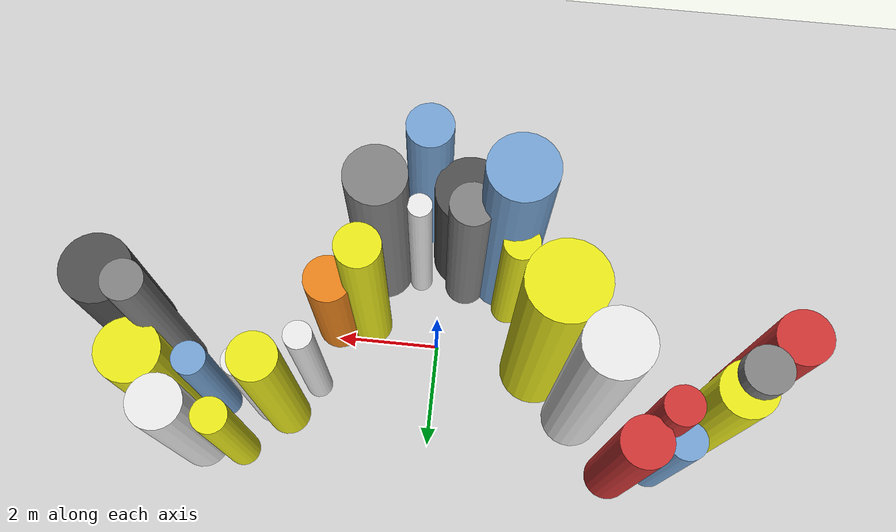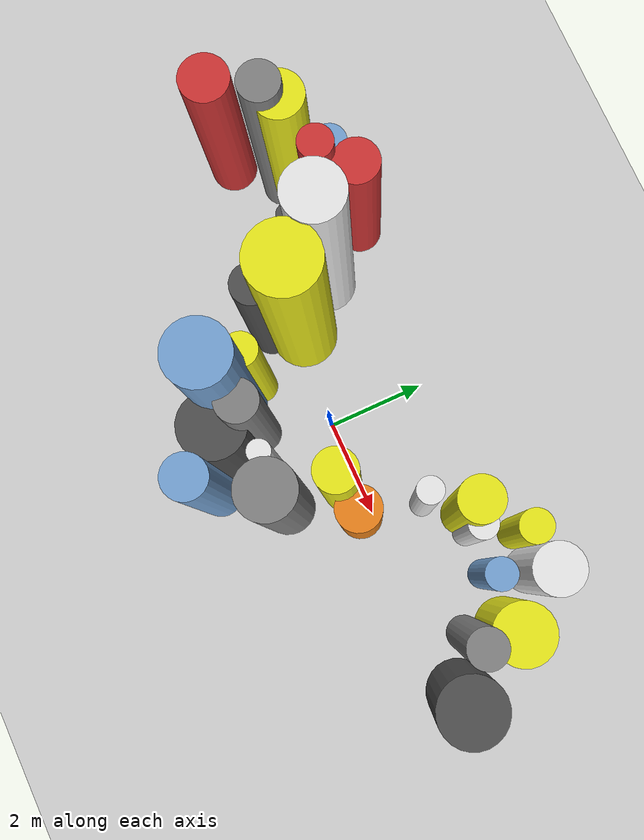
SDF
<?xml version='1.0'?>
<sdf version='1.6'>
  <world name='routeA_rl_v1__dense_recovery__rl_train__s_turn_multi_obstacle__000022'>
    <!-- Sun light -->
    <light name='sun' type='directional'>
      <cast_shadows>1</cast_shadows>
      <pose>0 0 10 0 0 0</pose>
      <diffuse>0.8 0.8 0.8 1</diffuse>
      <specular>0.2 0.2 0.2 1</specular>
      <attenuation>
        <range>1000</range>
        <constant>0.9</constant>
        <linear>0.01</linear>
        <quadratic>0.001</quadratic>
      </attenuation>
      <direction>-0.5 0.1 -0.9</direction>
    </light>

    <!-- Ground plane -->
    <model name='ground_plane'>
      <static>1</static>
      <link name='link'>
        <collision name='collision'>
          <geometry>
            <plane>
              <normal>0 0 1</normal>
              <size>100 100</size>
            </plane>
          </geometry>
          <surface>
            <contact>
              <collide_bitmask>65535</collide_bitmask>
              <ode/>
            </contact>
            <friction>
              <ode>
                <mu>100</mu>
                <mu2>50</mu2>
              </ode>
              <torsional><ode/></torsional>
            </friction>
            <bounce/>
          </surface>
          <max_contacts>10</max_contacts>
        </collision>
        <visual name='visual'>
          <cast_shadows>0</cast_shadows>
          <geometry>
            <plane>
              <normal>0 0 1</normal>
              <size>100 100</size>
            </plane>
          </geometry>
          <material>
            <script>
              <uri>file://media/materials/scripts/gazebo.material</uri>
              <n>Gazebo/Grey</n>
            </script>
          </material>
        </visual>
      </link>
    </model>

    <!-- Environment -->
    <magnetic_field>6e-06 2.3e-05 -4.2e-05</magnetic_field>
    <atmosphere type='adiabatic'/>
    <physics name='default_physics' default='0' type='ode'>
      <gravity>0 0 -9.8</gravity>
      <max_step_size>0.004</max_step_size>
      <real_time_factor>1</real_time_factor>
      <real_time_update_rate>250</real_time_update_rate>
    </physics>
    <scene>
      <ambient>0.4 0.4 0.4 1</ambient>
      <background>0.7 0.7 0.7 1</background>
      <shadows>1</shadows>
    </scene>
    <wind/>
    <spherical_coordinates>
      <surface_model>EARTH_WGS84</surface_model>
      <latitude_deg>0</latitude_deg>
      <longitude_deg>0</longitude_deg>
      <elevation>0</elevation>
      <heading_deg>0</heading_deg>
    </spherical_coordinates>

    <!-- ============ OBSTACLES (28) ============ -->
    <model name='s_turn_obs_0'>
      <static>1</static>
      <link name='link'>
        <visual name='visual'>
          <geometry>
            <cylinder>
              <radius>0.4797</radius>
              <length>4.3625</length>
            </cylinder>
          </geometry>
          <material>
            <script>
              <n>Gazebo/Red</n>
              <uri>file://media/materials/scripts/gazebo.material</uri>
            </script>
            <ambient>0.8 0.2 0.2 1</ambient>
          </material>
        </visual>
        <collision name='collision'>
          <geometry>
            <cylinder>
              <radius>0.4797</radius>
              <length>4.3625</length>
            </cylinder>
          </geometry>
          <max_contacts>10</max_contacts>
          <surface>
            <contact><ode/></contact>
            <bounce/>
            <friction>
              <ode><mu>1</mu><mu2>1</mu2></ode>
              <torsional><ode/></torsional>
            </friction>
          </surface>
        </collision>
      </link>
      <pose>-6.0000 0.3883 2.1812 0 0 0.0000</pose>
    </model>

    <model name='s_turn_obs_1'>
      <static>1</static>
      <link name='link'>
        <visual name='visual'>
          <geometry>
            <cylinder>
              <radius>0.4012</radius>
              <length>5.0784</length>
            </cylinder>
          </geometry>
          <material>
            <script>
              <n>Gazebo/Grey</n>
              <uri>file://media/materials/scripts/gazebo.material</uri>
            </script>
            <ambient>0.5 0.5 0.5 1</ambient>
          </material>
        </visual>
        <collision name='collision'>
          <geometry>
            <cylinder>
              <radius>0.4012</radius>
              <length>5.0784</length>
            </cylinder>
          </geometry>
          <max_contacts>10</max_contacts>
          <surface>
            <contact><ode/></contact>
            <bounce/>
            <friction>
              <ode><mu>1</mu><mu2>1</mu2></ode>
              <torsional><ode/></torsional>
            </friction>
          </surface>
        </collision>
      </link>
      <pose>-5.2000 1.1799 2.5392 0 0 0.0000</pose>
    </model>

    <model name='s_turn_obs_2'>
      <static>1</static>
      <link name='link'>
        <visual name='visual'>
          <geometry>
            <cylinder>
              <radius>0.3400</radius>
              <length>3.3778</length>
            </cylinder>
          </geometry>
          <material>
            <script>
              <n>Gazebo/Blue</n>
              <uri>file://media/materials/scripts/gazebo.material</uri>
            </script>
            <ambient>0.447 0.624 0.812 1</ambient>
          </material>
        </visual>
        <collision name='collision'>
          <geometry>
            <cylinder>
              <radius>0.3400</radius>
              <length>3.3778</length>
            </cylinder>
          </geometry>
          <max_contacts>10</max_contacts>
          <surface>
            <contact><ode/></contact>
            <bounce/>
            <friction>
              <ode><mu>1</mu><mu2>1</mu2></ode>
              <torsional><ode/></torsional>
            </friction>
          </surface>
        </collision>
      </link>
      <pose>-4.4000 2.0668 1.6889 0 0 0.0000</pose>
    </model>

    <model name='s_turn_obs_3'>
      <static>1</static>
      <link name='link'>
        <visual name='visual'>
          <geometry>
            <cylinder>
              <radius>0.4517</radius>
              <length>4.0051</length>
            </cylinder>
          </geometry>
          <material>
            <script>
              <n>Gazebo/Red</n>
              <uri>file://media/materials/scripts/gazebo.material</uri>
            </script>
            <ambient>0.8 0.2 0.2 1</ambient>
          </material>
        </visual>
        <collision name='collision'>
          <geometry>
            <cylinder>
              <radius>0.4517</radius>
              <length>4.0051</length>
            </cylinder>
          </geometry>
          <max_contacts>10</max_contacts>
          <surface>
            <contact><ode/></contact>
            <bounce/>
            <friction>
              <ode><mu>1</mu><mu2>1</mu2></ode>
              <torsional><ode/></torsional>
            </friction>
          </surface>
        </collision>
      </link>
      <pose>-3.6000 2.2701 2.0026 0 0 0.0000</pose>
    </model>

    <model name='s_turn_obs_4'>
      <static>1</static>
      <link name='link'>
        <visual name='visual'>
          <geometry>
            <cylinder>
              <radius>0.5780</radius>
              <length>5.7370</length>
            </cylinder>
          </geometry>
          <material>
            <script>
              <n>Gazebo/White</n>
              <uri>file://media/materials/scripts/gazebo.material</uri>
            </script>
            <ambient>0.9 0.9 0.9 1</ambient>
          </material>
        </visual>
        <collision name='collision'>
          <geometry>
            <cylinder>
              <radius>0.5780</radius>
              <length>5.7370</length>
            </cylinder>
          </geometry>
          <max_contacts>10</max_contacts>
          <surface>
            <contact><ode/></contact>
            <bounce/>
            <friction>
              <ode><mu>1</mu><mu2>1</mu2></ode>
              <torsional><ode/></torsional>
            </friction>
          </surface>
        </collision>
      </link>
      <pose>-2.8000 1.1692 2.8685 0 0 0.0000</pose>
    </model>

    <model name='s_turn_obs_5'>
      <static>1</static>
      <link name='link'>
        <visual name='visual'>
          <geometry>
            <cylinder>
              <radius>0.6851</radius>
              <length>5.6843</length>
            </cylinder>
          </geometry>
          <material>
            <script>
              <n>Gazebo/Yellow</n>
              <uri>file://media/materials/scripts/gazebo.material</uri>
            </script>
            <ambient>0.9 0.9 0.1 1</ambient>
          </material>
        </visual>
        <collision name='collision'>
          <geometry>
            <cylinder>
              <radius>0.6851</radius>
              <length>5.6843</length>
            </cylinder>
          </geometry>
          <max_contacts>10</max_contacts>
          <surface>
            <contact><ode/></contact>
            <bounce/>
            <friction>
              <ode><mu>1</mu><mu2>1</mu2></ode>
              <torsional><ode/></torsional>
            </friction>
          </surface>
        </collision>
      </link>
      <pose>-2.0000 0.2685 2.8421 0 0 0.0000</pose>
    </model>

    <model name='s_turn_obs_6'>
      <static>1</static>
      <link name='link'>
        <visual name='visual'>
          <geometry>
            <cylinder>
              <radius>0.6120</radius>
              <length>5.4803</length>
            </cylinder>
          </geometry>
          <material>
            <script>
              <n>Gazebo/Blue</n>
              <uri>file://media/materials/scripts/gazebo.material</uri>
            </script>
            <ambient>0.447 0.624 0.812 1</ambient>
          </material>
        </visual>
        <collision name='collision'>
          <geometry>
            <cylinder>
              <radius>0.6120</radius>
              <length>5.4803</length>
            </cylinder>
          </geometry>
          <max_contacts>10</max_contacts>
          <surface>
            <contact><ode/></contact>
            <bounce/>
            <friction>
              <ode><mu>1</mu><mu2>1</mu2></ode>
              <torsional><ode/></torsional>
            </friction>
          </surface>
        </collision>
      </link>
      <pose>-1.2000 -1.6147 2.7402 0 0 0.0000</pose>
    </model>

    <model name='s_turn_obs_7'>
      <static>1</static>
      <link name='link'>
        <visual name='visual'>
          <geometry>
            <cylinder>
              <radius>0.6517</radius>
              <length>3.4846</length>
            </cylinder>
          </geometry>
          <material>
            <script>
              <n>Gazebo/DarkGrey</n>
              <uri>file://media/materials/scripts/gazebo.material</uri>
            </script>
            <ambient>0.3 0.3 0.3 1</ambient>
          </material>
        </visual>
        <collision name='collision'>
          <geometry>
            <cylinder>
              <radius>0.6517</radius>
              <length>3.4846</length>
            </cylinder>
          </geometry>
          <max_contacts>10</max_contacts>
          <surface>
            <contact><ode/></contact>
            <bounce/>
            <friction>
              <ode><mu>1</mu><mu2>1</mu2></ode>
              <torsional><ode/></torsional>
            </friction>
          </surface>
        </collision>
      </link>
      <pose>-0.4000 -2.0163 1.7423 0 0 0.0000</pose>
    </model>

    <model name='s_turn_obs_8'>
      <static>1</static>
      <link name='link'>
        <visual name='visual'>
          <geometry>
            <cylinder>
              <radius>0.4264</radius>
              <length>4.5046</length>
            </cylinder>
          </geometry>
          <material>
            <script>
              <n>Gazebo/Blue</n>
              <uri>file://media/materials/scripts/gazebo.material</uri>
            </script>
            <ambient>0.447 0.624 0.812 1</ambient>
          </material>
        </visual>
        <collision name='collision'>
          <geometry>
            <cylinder>
              <radius>0.4264</radius>
              <length>4.5046</length>
            </cylinder>
          </geometry>
          <max_contacts>10</max_contacts>
          <surface>
            <contact><ode/></contact>
            <bounce/>
            <friction>
              <ode><mu>1</mu><mu2>1</mu2></ode>
              <torsional><ode/></torsional>
            </friction>
          </surface>
        </collision>
      </link>
      <pose>0.4000 -2.6927 2.2523 0 0 0.0000</pose>
    </model>

    <model name='s_turn_obs_9'>
      <static>1</static>
      <link name='link'>
        <visual name='visual'>
          <geometry>
            <cylinder>
              <radius>0.5535</radius>
              <length>4.8521</length>
            </cylinder>
          </geometry>
          <material>
            <script>
              <n>Gazebo/Grey</n>
              <uri>file://media/materials/scripts/gazebo.material</uri>
            </script>
            <ambient>0.5 0.5 0.5 1</ambient>
          </material>
        </visual>
        <collision name='collision'>
          <geometry>
            <cylinder>
              <radius>0.5535</radius>
              <length>4.8521</length>
            </cylinder>
          </geometry>
          <max_contacts>10</max_contacts>
          <surface>
            <contact><ode/></contact>
            <bounce/>
            <friction>
              <ode><mu>1</mu><mu2>1</mu2></ode>
              <torsional><ode/></torsional>
            </friction>
          </surface>
        </collision>
      </link>
      <pose>1.2000 -1.5305 2.4260 0 0 0.0000</pose>
    </model>

    <model name='s_turn_obs_10'>
      <static>1</static>
      <link name='link'>
        <visual name='visual'>
          <geometry>
            <cylinder>
              <radius>0.4453</radius>
              <length>3.0642</length>
            </cylinder>
          </geometry>
          <material>
            <script>
              <n>Gazebo/Orange</n>
              <uri>file://media/materials/scripts/gazebo.material</uri>
            </script>
            <ambient>0.9 0.5 0.1 1</ambient>
          </material>
        </visual>
        <collision name='collision'>
          <geometry>
            <cylinder>
              <radius>0.4453</radius>
              <length>3.0642</length>
            </cylinder>
          </geometry>
          <max_contacts>10</max_contacts>
          <surface>
            <contact><ode/></contact>
            <bounce/>
            <friction>
              <ode><mu>1</mu><mu2>1</mu2></ode>
              <torsional><ode/></torsional>
            </friction>
          </surface>
        </collision>
      </link>
      <pose>2.0000 -0.2525 1.5321 0 0 0.0000</pose>
    </model>

    <model name='s_turn_obs_11'>
      <static>1</static>
      <link name='link'>
        <visual name='visual'>
          <geometry>
            <cylinder>
              <radius>0.4209</radius>
              <length>4.5787</length>
            </cylinder>
          </geometry>
          <material>
            <script>
              <n>Gazebo/Yellow</n>
              <uri>file://media/materials/scripts/gazebo.material</uri>
            </script>
            <ambient>0.9 0.9 0.1 1</ambient>
          </material>
        </visual>
        <collision name='collision'>
          <geometry>
            <cylinder>
              <radius>0.4209</radius>
              <length>4.5787</length>
            </cylinder>
          </geometry>
          <max_contacts>10</max_contacts>
          <surface>
            <contact><ode/></contact>
            <bounce/>
            <friction>
              <ode><mu>1</mu><mu2>1</mu2></ode>
              <torsional><ode/></torsional>
            </friction>
          </surface>
        </collision>
      </link>
      <pose>2.8000 1.6483 2.2894 0 0 0.0000</pose>
    </model>

    <model name='s_turn_obs_12'>
      <static>1</static>
      <link name='link'>
        <visual name='visual'>
          <geometry>
            <cylinder>
              <radius>0.3246</radius>
              <length>3.4407</length>
            </cylinder>
          </geometry>
          <material>
            <script>
              <n>Gazebo/Yellow</n>
              <uri>file://media/materials/scripts/gazebo.material</uri>
            </script>
            <ambient>0.9 0.9 0.1 1</ambient>
          </material>
        </visual>
        <collision name='collision'>
          <geometry>
            <cylinder>
              <radius>0.3246</radius>
              <length>3.4407</length>
            </cylinder>
          </geometry>
          <max_contacts>10</max_contacts>
          <surface>
            <contact><ode/></contact>
            <bounce/>
            <friction>
              <ode><mu>1</mu><mu2>1</mu2></ode>
              <torsional><ode/></torsional>
            </friction>
          </surface>
        </collision>
      </link>
      <pose>3.6000 2.4535 1.7203 0 0 0.0000</pose>
    </model>

    <model name='s_turn_obs_13'>
      <static>1</static>
      <link name='link'>
        <visual name='visual'>
          <geometry>
            <cylinder>
              <radius>0.4811</radius>
              <length>3.9756</length>
            </cylinder>
          </geometry>
          <material>
            <script>
              <n>Gazebo/White</n>
              <uri>file://media/materials/scripts/gazebo.material</uri>
            </script>
            <ambient>0.9 0.9 0.9 1</ambient>
          </material>
        </visual>
        <collision name='collision'>
          <geometry>
            <cylinder>
              <radius>0.4811</radius>
              <length>3.9756</length>
            </cylinder>
          </geometry>
          <max_contacts>10</max_contacts>
          <surface>
            <contact><ode/></contact>
            <bounce/>
            <friction>
              <ode><mu>1</mu><mu2>1</mu2></ode>
              <torsional><ode/></torsional>
            </friction>
          </surface>
        </collision>
      </link>
      <pose>4.4000 2.4105 1.9878 0 0 0.0000</pose>
    </model>

    <model name='s_turn_obs_14'>
      <static>1</static>
      <link name='link'>
        <visual name='visual'>
          <geometry>
            <cylinder>
              <radius>0.5878</radius>
              <length>3.3551</length>
            </cylinder>
          </geometry>
          <material>
            <script>
              <n>Gazebo/Yellow</n>
              <uri>file://media/materials/scripts/gazebo.material</uri>
            </script>
            <ambient>0.9 0.9 0.1 1</ambient>
          </material>
        </visual>
        <collision name='collision'>
          <geometry>
            <cylinder>
              <radius>0.5878</radius>
              <length>3.3551</length>
            </cylinder>
          </geometry>
          <max_contacts>10</max_contacts>
          <surface>
            <contact><ode/></contact>
            <bounce/>
            <friction>
              <ode><mu>1</mu><mu2>1</mu2></ode>
              <torsional><ode/></torsional>
            </friction>
          </surface>
        </collision>
      </link>
      <pose>5.2000 1.4597 1.6776 0 0 0.0000</pose>
    </model>

    <model name='s_turn_obs_15'>
      <static>1</static>
      <link name='link'>
        <visual name='visual'>
          <geometry>
            <cylinder>
              <radius>0.6553</radius>
              <length>3.4314</length>
            </cylinder>
          </geometry>
          <material>
            <script>
              <n>Gazebo/DarkGrey</n>
              <uri>file://media/materials/scripts/gazebo.material</uri>
            </script>
            <ambient>0.3 0.3 0.3 1</ambient>
          </material>
        </visual>
        <collision name='collision'>
          <geometry>
            <cylinder>
              <radius>0.6553</radius>
              <length>3.4314</length>
            </cylinder>
          </geometry>
          <max_contacts>10</max_contacts>
          <surface>
            <contact><ode/></contact>
            <bounce/>
            <friction>
              <ode><mu>1</mu><mu2>1</mu2></ode>
              <torsional><ode/></torsional>
            </friction>
          </surface>
        </collision>
      </link>
      <pose>6.0000 0.0792 1.7157 0 0 0.0000</pose>
    </model>

    <model name='s_turn_obs2_0'>
      <static>1</static>
      <link name='link'>
        <visual name='visual'>
          <geometry>
            <cylinder>
              <radius>0.4830</radius>
              <length>4.7399</length>
            </cylinder>
          </geometry>
          <material>
            <script>
              <n>Gazebo/Yellow</n>
              <uri>file://media/materials/scripts/gazebo.material</uri>
            </script>
            <ambient>0.9 0.9 0.1 1</ambient>
          </material>
        </visual>
        <collision name='collision'>
          <geometry>
            <cylinder>
              <radius>0.4830</radius>
              <length>4.7399</length>
            </cylinder>
          </geometry>
          <max_contacts>10</max_contacts>
          <surface>
            <contact><ode/></contact>
            <bounce/>
            <friction>
              <ode><mu>1</mu><mu2>1</mu2></ode>
              <torsional><ode/></torsional>
            </friction>
          </surface>
        </collision>
      </link>
      <pose>-5.0000 1.4252 2.3700 0 0 0.0000</pose>
    </model>

    <model name='s_turn_obs2_1'>
      <static>1</static>
      <link name='link'>
        <visual name='visual'>
          <geometry>
            <cylinder>
              <radius>0.3404</radius>
              <length>4.3820</length>
            </cylinder>
          </geometry>
          <material>
            <script>
              <n>Gazebo/Red</n>
              <uri>file://media/materials/scripts/gazebo.material</uri>
            </script>
            <ambient>0.8 0.2 0.2 1</ambient>
          </material>
        </visual>
        <collision name='collision'>
          <geometry>
            <cylinder>
              <radius>0.3404</radius>
              <length>4.3820</length>
            </cylinder>
          </geometry>
          <max_contacts>10</max_contacts>
          <surface>
            <contact><ode/></contact>
            <bounce/>
            <friction>
              <ode><mu>1</mu><mu2>1</mu2></ode>
              <torsional><ode/></torsional>
            </friction>
          </surface>
        </collision>
      </link>
      <pose>-4.0909 1.7035 2.1910 0 0 0.0000</pose>
    </model>

    <model name='s_turn_obs2_2'>
      <static>1</static>
      <link name='link'>
        <visual name='visual'>
          <geometry>
            <cylinder>
              <radius>0.2308</radius>
              <length>4.0353</length>
            </cylinder>
          </geometry>
          <material>
            <script>
              <n>Gazebo/DarkGrey</n>
              <uri>file://media/materials/scripts/gazebo.material</uri>
            </script>
            <ambient>0.3 0.3 0.3 1</ambient>
          </material>
        </visual>
        <collision name='collision'>
          <geometry>
            <cylinder>
              <radius>0.2308</radius>
              <length>4.0353</length>
            </cylinder>
          </geometry>
          <max_contacts>10</max_contacts>
          <surface>
            <contact><ode/></contact>
            <bounce/>
            <friction>
              <ode><mu>1</mu><mu2>1</mu2></ode>
              <torsional><ode/></torsional>
            </friction>
          </surface>
        </collision>
      </link>
      <pose>-3.1818 0.7563 2.0177 0 0 0.0000</pose>
    </model>

    <model name='s_turn_obs2_3'>
      <static>1</static>
      <link name='link'>
        <visual name='visual'>
          <geometry>
            <cylinder>
              <radius>0.3965</radius>
              <length>4.1350</length>
            </cylinder>
          </geometry>
          <material>
            <script>
              <n>Gazebo/DarkGrey</n>
              <uri>file://media/materials/scripts/gazebo.material</uri>
            </script>
            <ambient>0.3 0.3 0.3 1</ambient>
          </material>
        </visual>
        <collision name='collision'>
          <geometry>
            <cylinder>
              <radius>0.3965</radius>
              <length>4.1350</length>
            </cylinder>
          </geometry>
          <max_contacts>10</max_contacts>
          <surface>
            <contact><ode/></contact>
            <bounce/>
            <friction>
              <ode><mu>1</mu><mu2>1</mu2></ode>
              <torsional><ode/></torsional>
            </friction>
          </surface>
        </collision>
      </link>
      <pose>-2.2727 -0.3559 2.0675 0 0 0.0000</pose>
    </model>

    <model name='s_turn_obs2_4'>
      <static>1</static>
      <link name='link'>
        <visual name='visual'>
          <geometry>
            <cylinder>
              <radius>0.3315</radius>
              <length>3.8075</length>
            </cylinder>
          </geometry>
          <material>
            <script>
              <n>Gazebo/Yellow</n>
              <uri>file://media/materials/scripts/gazebo.material</uri>
            </script>
            <ambient>0.9 0.9 0.1 1</ambient>
          </material>
        </visual>
        <collision name='collision'>
          <geometry>
            <cylinder>
              <radius>0.3315</radius>
              <length>3.8075</length>
            </cylinder>
          </geometry>
          <max_contacts>10</max_contacts>
          <surface>
            <contact><ode/></contact>
            <bounce/>
            <friction>
              <ode><mu>1</mu><mu2>1</mu2></ode>
              <torsional><ode/></torsional>
            </friction>
          </surface>
        </collision>
      </link>
      <pose>-1.3636 -1.0032 1.9037 0 0 0.0000</pose>
    </model>

    <model name='s_turn_obs2_5'>
      <static>1</static>
      <link name='link'>
        <visual name='visual'>
          <geometry>
            <cylinder>
              <radius>0.4066</radius>
              <length>4.3192</length>
            </cylinder>
          </geometry>
          <material>
            <script>
              <n>Gazebo/Grey</n>
              <uri>file://media/materials/scripts/gazebo.material</uri>
            </script>
            <ambient>0.5 0.5 0.5 1</ambient>
          </material>
        </visual>
        <collision name='collision'>
          <geometry>
            <cylinder>
              <radius>0.4066</radius>
              <length>4.3192</length>
            </cylinder>
          </geometry>
          <max_contacts>10</max_contacts>
          <surface>
            <contact><ode/></contact>
            <bounce/>
            <friction>
              <ode><mu>1</mu><mu2>1</mu2></ode>
              <torsional><ode/></torsional>
            </friction>
          </surface>
        </collision>
      </link>
      <pose>-0.4545 -1.4036 2.1596 0 0 0.0000</pose>
    </model>

    <model name='s_turn_obs2_6'>
      <static>1</static>
      <link name='link'>
        <visual name='visual'>
          <geometry>
            <cylinder>
              <radius>0.2219</radius>
              <length>4.0218</length>
            </cylinder>
          </geometry>
          <material>
            <script>
              <n>Gazebo/White</n>
              <uri>file://media/materials/scripts/gazebo.material</uri>
            </script>
            <ambient>0.9 0.9 0.9 1</ambient>
          </material>
        </visual>
        <collision name='collision'>
          <geometry>
            <cylinder>
              <radius>0.2219</radius>
              <length>4.0218</length>
            </cylinder>
          </geometry>
          <max_contacts>10</max_contacts>
          <surface>
            <contact><ode/></contact>
            <bounce/>
            <friction>
              <ode><mu>1</mu><mu2>1</mu2></ode>
              <torsional><ode/></torsional>
            </friction>
          </surface>
        </collision>
      </link>
      <pose>0.4545 -1.4171 2.0109 0 0 0.0000</pose>
    </model>

    <model name='s_turn_obs2_7'>
      <static>1</static>
      <link name='link'>
        <visual name='visual'>
          <geometry>
            <cylinder>
              <radius>0.4058</radius>
              <length>4.6443</length>
            </cylinder>
          </geometry>
          <material>
            <script>
              <n>Gazebo/Yellow</n>
              <uri>file://media/materials/scripts/gazebo.material</uri>
            </script>
            <ambient>0.9 0.9 0.1 1</ambient>
          </material>
        </visual>
        <collision name='collision'>
          <geometry>
            <cylinder>
              <radius>0.4058</radius>
              <length>4.6443</length>
            </cylinder>
          </geometry>
          <max_contacts>10</max_contacts>
          <surface>
            <contact><ode/></contact>
            <bounce/>
            <friction>
              <ode><mu>1</mu><mu2>1</mu2></ode>
              <torsional><ode/></torsional>
            </friction>
          </surface>
        </collision>
      </link>
      <pose>1.3636 -0.3546 2.3222 0 0 0.0000</pose>
    </model>

    <model name='s_turn_obs2_8'>
      <static>1</static>
      <link name='link'>
        <visual name='visual'>
          <geometry>
            <cylinder>
              <radius>0.2569</radius>
              <length>3.7326</length>
            </cylinder>
          </geometry>
          <material>
            <script>
              <n>Gazebo/White</n>
              <uri>file://media/materials/scripts/gazebo.material</uri>
            </script>
            <ambient>0.9 0.9 0.9 1</ambient>
          </material>
        </visual>
        <collision name='collision'>
          <geometry>
            <cylinder>
              <radius>0.2569</radius>
              <length>3.7326</length>
            </cylinder>
          </geometry>
          <max_contacts>10</max_contacts>
          <surface>
            <contact><ode/></contact>
            <bounce/>
            <friction>
              <ode><mu>1</mu><mu2>1</mu2></ode>
              <torsional><ode/></torsional>
            </friction>
          </surface>
        </collision>
      </link>
      <pose>2.2727 1.0033 1.8663 0 0 0.0000</pose>
    </model>

    <model name='s_turn_obs2_9'>
      <static>1</static>
      <link name='link'>
        <visual name='visual'>
          <geometry>
            <cylinder>
              <radius>0.2757</radius>
              <length>3.8787</length>
            </cylinder>
          </geometry>
          <material>
            <script>
              <n>Gazebo/White</n>
              <uri>file://media/materials/scripts/gazebo.material</uri>
            </script>
            <ambient>0.9 0.9 0.9 1</ambient>
          </material>
        </visual>
        <collision name='collision'>
          <geometry>
            <cylinder>
              <radius>0.2757</radius>
              <length>3.8787</length>
            </cylinder>
          </geometry>
          <max_contacts>10</max_contacts>
          <surface>
            <contact><ode/></contact>
            <bounce/>
            <friction>
              <ode><mu>1</mu><mu2>1</mu2></ode>
              <torsional><ode/></torsional>
            </friction>
          </surface>
        </collision>
      </link>
      <pose>3.1818 1.5742 1.9393 0 0 0.0000</pose>
    </model>

    <model name='s_turn_obs2_10'>
      <static>1</static>
      <link name='link'>
        <visual name='visual'>
          <geometry>
            <cylinder>
              <radius>0.3029</radius>
              <length>3.5011</length>
            </cylinder>
          </geometry>
          <material>
            <script>
              <n>Gazebo/Blue</n>
              <uri>file://media/materials/scripts/gazebo.material</uri>
            </script>
            <ambient>0.447 0.624 0.812 1</ambient>
          </material>
        </visual>
        <collision name='collision'>
          <geometry>
            <cylinder>
              <radius>0.3029</radius>
              <length>3.5011</length>
            </cylinder>
          </geometry>
          <max_contacts>10</max_contacts>
          <surface>
            <contact><ode/></contact>
            <bounce/>
            <friction>
              <ode><mu>1</mu><mu2>1</mu2></ode>
              <torsional><ode/></torsional>
            </friction>
          </surface>
        </collision>
      </link>
      <pose>4.0909 1.5281 1.7506 0 0 0.0000</pose>
    </model>

    <model name='s_turn_obs2_11'>
      <static>1</static>
      <link name='link'>
        <visual name='visual'>
          <geometry>
            <cylinder>
              <radius>0.3589</radius>
              <length>4.8483</length>
            </cylinder>
          </geometry>
          <material>
            <script>
              <n>Gazebo/Grey</n>
              <uri>file://media/materials/scripts/gazebo.material</uri>
            </script>
            <ambient>0.5 0.5 0.5 1</ambient>
          </material>
        </visual>
        <collision name='collision'>
          <geometry>
            <cylinder>
              <radius>0.3589</radius>
              <length>4.8483</length>
            </cylinder>
          </geometry>
          <max_contacts>10</max_contacts>
          <surface>
            <contact><ode/></contact>
            <bounce/>
            <friction>
              <ode><mu>1</mu><mu2>1</mu2></ode>
              <torsional><ode/></torsional>
            </friction>
          </surface>
        </collision>
      </link>
      <pose>5.0000 0.6764 2.4241 0 0 0.0000</pose>
    </model>

    <!-- GUI camera -->
    <gui fullscreen='0'>
      <camera name='user_camera'>
        <pose>-15 0 18 0 0.85 0.15</pose>
        <view_controller>orbit</view_controller>
        <projection_type>perspective</projection_type>
      </camera>
    </gui>
  </world>
</sdf>
